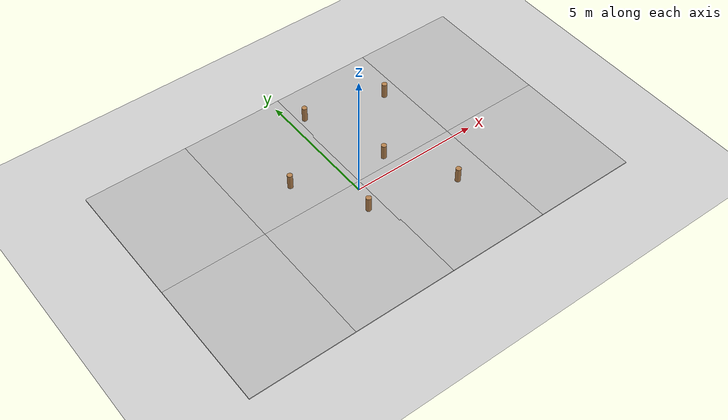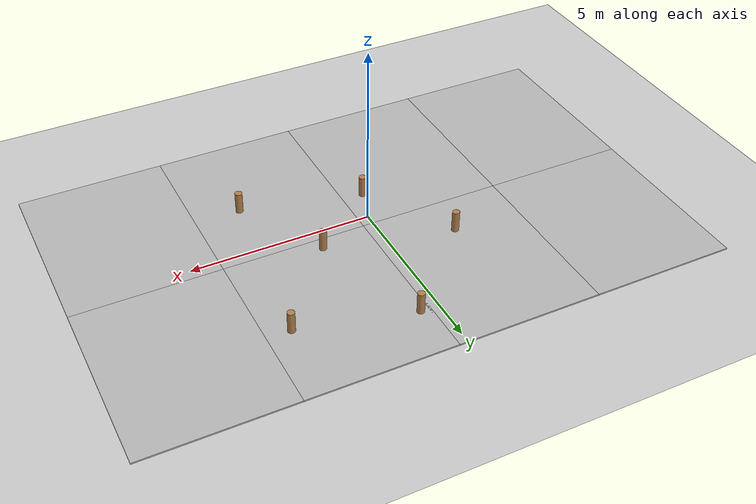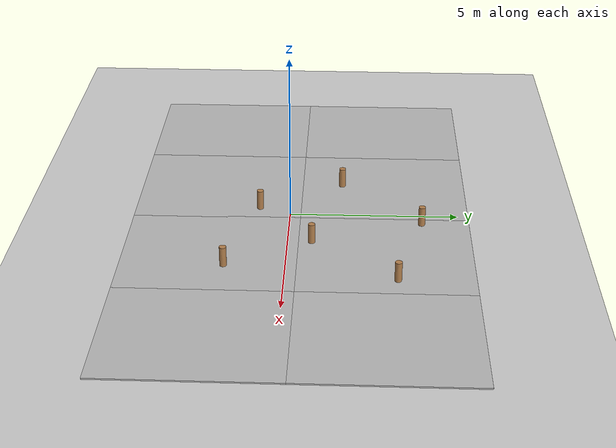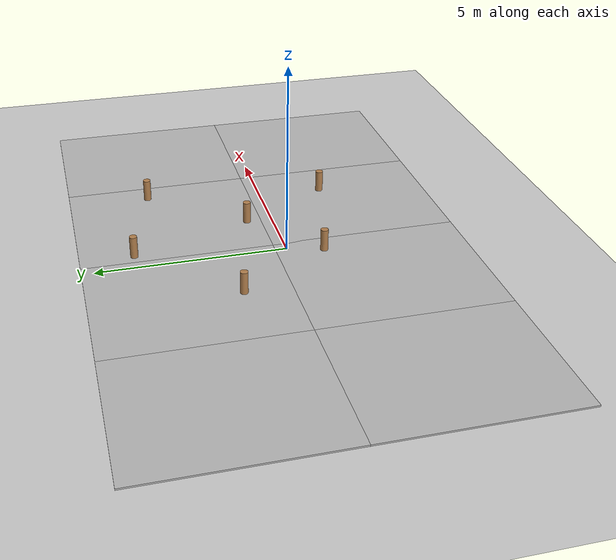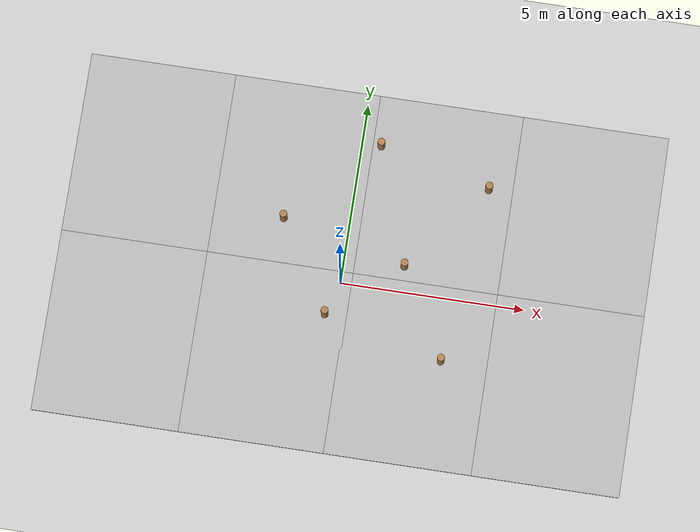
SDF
<sdf version="1.7">
 <world name="default">
  <physics name="1ms" type="ignored">
   <max_step_size>0.001</max_step_size>
   <real_time_factor>1.0</real_time_factor>
  </physics>
  <plugin filename="gz-sim-physics-system" name="gz::sim::systems::Physics"/>
  <plugin filename="gz-sim-user-commands-system" name="gz::sim::systems::UserCommands"/>
  <plugin filename="gz-sim-scene-broadcaster-system" name="gz::sim::systems::SceneBroadcaster"/>
  <plugin filename="gz-sim-sensors-system" name="gz::sim::systems::Sensors">
   <render_engine>ogre2</render_engine>
  </plugin>
  <plugin filename="gz-sim-imu-system" name="gz::sim::systems::Imu"/>
  <plugin filename="gz-sim-contact-system" name="gz::sim::systems::Contact"/>
  <plugin filename="gz-sim-navsat-system" name="gz::sim::systems::NavSat"/>
  <include><uri>https://fuel.gazebosim.org/1.0/OpenRobotics/models/Ground Plane</uri></include>
  <include><uri>https://fuel.gazebosim.org/1.0/OpenRobotics/models/Sun</uri></include>
  <gravity>0 0 -9.8</gravity>
  <magnetic_field>6e-06 2.3e-05 -4.2e-05</magnetic_field>
  <atmosphere type="adiabatic"/>
  <physics type="ode">
   <max_step_size>0.001</max_step_size>
   <real_time_factor>1</real_time_factor>
   <real_time_update_rate>200</real_time_update_rate>
  </physics>
  <scene><ambient>0.4 0.4 0.4 1</ambient><background>0.7 0.7 0.7 1</background><shadows>0</shadows></scene>
  <audio><device>default</device></audio>
  <spherical_coordinates>
   <surface_model>EARTH_WGS84</surface_model>
   <latitude_deg>49.9</latitude_deg>
   <longitude_deg>8.9</longitude_deg>
   <elevation>0</elevation>
   <heading_deg>90</heading_deg>
  </spherical_coordinates>
  <model name="my_grass_plane">
   <static>1</static>
   <link name="link">
    <collision name="collision">
     <geometry><plane><normal>0 0 1</normal><size>60 60</size></plane></geometry>
     <surface><friction><ode><mu>100</mu><mu2>50</mu2></ode></friction></surface>
    </collision>
    <visual name="visual">
     <cast_shadows>0</cast_shadows>
     <geometry><plane><normal>0 0 1</normal><size>60 60</size></plane></geometry>
     <material>
      <script>
       <uri>model://my_grass_plane/materials/scripts</uri>
       <uri>model://my_grass_plane/materials/textures/</uri>
       <name>MyGrassPlane/Image</name>
      </script>
     </material>
    </visual>
   </link>
   <pose>0.027033 0.023061 0.01 0 -0 0</pose>
  </model>
  <model name="mud_box">
   <static>1</static>
   <link name="link">
    <collision name="collision"><geometry><box><size>8 10 0.2</size></box></geometry></collision>
    <visual name="visual_1">
     <pose>-2 2.5 0 0 -0 0</pose>
     <cast_shadows>0</cast_shadows>
     <geometry><box><size>4 5 0.2</size></box></geometry>
     <material>
      <script>
       <uri>model://mud_box/materials/scripts</uri>
       <uri>model://mud_box/materials/textures</uri>
       <name>vrc/mud</name>
      </script>
     </material>
    </visual>
    <visual name="visual_2">
     <pose>2 2.5 0 0 -0 0</pose>
     <cast_shadows>0</cast_shadows>
     <geometry><box><size>4 5 0.2</size></box></geometry>
     <material>
      <script>
       <uri>model://mud_box/materials/scripts</uri>
       <uri>model://mud_box/materials/textures</uri>
       <name>vrc/mud</name>
      </script>
     </material>
    </visual>
    <visual name="visual_3">
     <pose>2 -2.5 0 0 -0 0</pose>
     <cast_shadows>0</cast_shadows>
     <geometry><box><size>4 5 0.2</size></box></geometry>
     <material>
      <script>
       <uri>model://mud_box/materials/scripts</uri>
       <uri>model://mud_box/materials/textures</uri>
       <name>vrc/mud</name>
      </script>
     </material>
    </visual>
    <visual name="visual_4">
     <pose>-2 -2.5 0 0 -0 0</pose>
     <cast_shadows>0</cast_shadows>
     <geometry><box><size>4 5 0.2</size></box></geometry>
     <material>
      <script>
       <uri>model://mud_box/materials/scripts</uri>
       <uri>model://mud_box/materials/textures</uri>
       <name>vrc/mud</name>
      </script>
     </material>
    </visual>
   </link>
   <pose>4.23875 0.317684 -0.067897 0 -0 0</pose>
  </model>
  <model name="mud_box_0">
   <static>1</static>
   <link name="link">
    <collision name="collision"><geometry><box><size>8 10 0.2</size></box></geometry></collision>
    <visual name="visual_1">
     <pose>-2 2.5 0 0 -0 0</pose>
     <cast_shadows>0</cast_shadows>
     <geometry><box><size>4 5 0.2</size></box></geometry>
     <material>
      <script>
       <uri>model://mud_box/materials/scripts</uri>
       <uri>model://mud_box/materials/textures</uri>
       <name>vrc/mud</name>
      </script>
     </material>
    </visual>
    <visual name="visual_2">
     <pose>2 2.5 0 0 -0 0</pose>
     <cast_shadows>0</cast_shadows>
     <geometry><box><size>4 5 0.2</size></box></geometry>
     <material>
      <script>
       <uri>model://mud_box/materials/scripts</uri>
       <uri>model://mud_box/materials/textures</uri>
       <name>vrc/mud</name>
      </script>
     </material>
    </visual>
    <visual name="visual_3">
     <pose>2 -2.5 0 0 -0 0</pose>
     <cast_shadows>0</cast_shadows>
     <geometry><box><size>4 5 0.2</size></box></geometry>
     <material>
      <script>
       <uri>model://mud_box/materials/scripts</uri>
       <uri>model://mud_box/materials/textures</uri>
       <name>vrc/mud</name>
      </script>
     </material>
    </visual>
    <visual name="visual_4">
     <pose>-2 -2.5 0 0 -0 0</pose>
     <cast_shadows>0</cast_shadows>
     <geometry><box><size>4 5 0.2</size></box></geometry>
     <material>
      <script>
       <uri>model://mud_box/materials/scripts</uri>
       <uri>model://mud_box/materials/textures</uri>
       <name>vrc/mud</name>
      </script>
     </material>
    </visual>
   </link>
   <pose>-3.7086 0.317684 -0.067897 0 -0 0</pose>
  </model>
  <model name="peg">
   <static>1</static>
   <link name="link">
    <pose>0 0 0.35 0 -0 0</pose>
    <inertial>
     <mass>0.0175</mass>
     <inertia>
      <ixx>9.74923e-06</ixx>
      <ixy>0</ixy>
      <ixz>0</ixz>
      <iyy>9.74923e-06</iyy>
      <iyz>0</iyz>
      <izz>8.31797e-07</izz>
     </inertia>
    </inertial>
    <collision name="collision">
     <geometry><cylinder><radius>0.1</radius><length>0.6</length></cylinder></geometry>
     <surface>
      <contact>
       <poissons_ratio>0.347</poissons_ratio>
       <elastic_modulus>8.8e+09</elastic_modulus>
       <ode><kp>100000</kp><kd>100</kd><max_vel>100</max_vel><min_depth>0.001</min_depth></ode>
      </contact>
      <friction>
       <torsional>
        <coefficient>1</coefficient>
        <use_patch_radius>0</use_patch_radius>
        <surface_radius>0.01</surface_radius>
       </torsional>
      </friction>
     </surface>
    </collision>
    <visual name="visual">
     <geometry><cylinder><radius>0.1</radius><length>0.6</length></cylinder></geometry>
     <material>
      <script><uri>file://media/materials/scripts/gazebo.material</uri><name>Gazebo/Wood</name></script>
     </material>
    </visual>
   </link>
   <pose>2.98528 -1.72893 -0.021402 0.001476 -0.006209 -1.6e-05</pose>
  </model>
  <model name="peg_0">
   <static>1</static>
   <link name="link">
    <pose>0 0 0.35 0 -0 0</pose>
    <inertial>
     <mass>0.0175</mass>
     <inertia>
      <ixx>9.74923e-06</ixx>
      <ixy>0</ixy>
      <ixz>0</ixz>
      <iyy>9.74923e-06</iyy>
      <iyz>0</iyz>
      <izz>8.31797e-07</izz>
     </inertia>
    </inertial>
    <collision name="collision">
     <geometry><cylinder><radius>0.1</radius><length>0.6</length></cylinder></geometry>
     <surface>
      <contact>
       <poissons_ratio>0.347</poissons_ratio>
       <elastic_modulus>8.8e+09</elastic_modulus>
       <ode><kp>100000</kp><kd>100</kd><max_vel>100</max_vel><min_depth>0.001</min_depth></ode>
      </contact>
      <friction>
       <torsional>
        <coefficient>1</coefficient>
        <use_patch_radius>0</use_patch_radius>
        <surface_radius>0.01</surface_radius>
       </torsional>
      </friction>
     </surface>
    </collision>
    <visual name="visual">
     <geometry><cylinder><radius>0.1</radius><length>0.6</length></cylinder></geometry>
     <material>
      <script><uri>file://media/materials/scripts/gazebo.material</uri><name>Gazebo/Wood</name></script>
     </material>
    </visual>
   </link>
   <pose>-0.296447 -0.921788 -0.018259 -0.006201 -0.001478 -3.6e-05</pose>
  </model>
  <model name="peg_1">
   <static>1</static>
   <link name="link">
    <pose>0 0 0.35 0 -0 0</pose>
    <inertial>
     <mass>0.0175</mass>
     <inertia>
      <ixx>9.74923e-06</ixx>
      <ixy>0</ixy>
      <ixz>0</ixz>
      <iyy>9.74923e-06</iyy>
      <iyz>0</iyz>
      <izz>8.31797e-07</izz>
     </inertia>
    </inertial>
    <collision name="collision">
     <geometry><cylinder><radius>0.1</radius><length>0.6</length></cylinder></geometry>
     <surface>
      <contact>
       <poissons_ratio>0.347</poissons_ratio>
       <elastic_modulus>8.8e+09</elastic_modulus>
       <ode><kp>100000</kp><kd>100</kd><max_vel>100</max_vel><min_depth>0.001</min_depth></ode>
      </contact>
      <friction>
       <torsional>
        <coefficient>1</coefficient>
        <use_patch_radius>0</use_patch_radius>
        <surface_radius>0.01</surface_radius>
       </torsional>
      </friction>
     </surface>
    </collision>
    <visual name="visual">
     <geometry><cylinder><radius>0.1</radius><length>0.6</length></cylinder></geometry>
     <material>
      <script><uri>file://media/materials/scripts/gazebo.material</uri><name>Gazebo/Wood</name></script>
     </material>
    </visual>
   </link>
   <pose>1.63598 0.700502 -0.021359 0.001098 -0.005264 -1.2e-05</pose>
  </model>
  <model name="peg_2">
   <static>1</static>
   <link name="link">
    <pose>0 0 0.35 0 -0 0</pose>
    <inertial>
     <mass>0.0175</mass>
     <inertia>
      <ixx>9.74923e-06</ixx>
      <ixy>0</ixy>
      <ixz>0</ixz>
      <iyy>9.74923e-06</iyy>
      <iyz>0</iyz>
      <izz>8.31797e-07</izz>
     </inertia>
    </inertial>
    <collision name="collision">
     <geometry><cylinder><radius>0.1</radius><length>0.6</length></cylinder></geometry>
     <surface>
      <contact>
       <poissons_ratio>0.347</poissons_ratio>
       <elastic_modulus>8.8e+09</elastic_modulus>
       <ode><kp>100000</kp><kd>100</kd><max_vel>100</max_vel><min_depth>0.001</min_depth></ode>
      </contact>
      <friction>
       <torsional>
        <coefficient>1</coefficient>
        <use_patch_radius>0</use_patch_radius>
        <surface_radius>0.01</surface_radius>
       </torsional>
      </friction>
     </surface>
    </collision>
    <visual name="visual">
     <geometry><cylinder><radius>0.1</radius><length>0.6</length></cylinder></geometry>
     <material>
      <script><uri>file://media/materials/scripts/gazebo.material</uri><name>Gazebo/Wood</name></script>
     </material>
    </visual>
   </link>
   <pose>-1.79879 1.53875 -0.018258 0.001477 -0.006205 -0.075759</pose>
  </model>
  <model name="peg_3">
   <static>1</static>
   <link name="link">
    <pose>0 0 0.35 0 -0 0</pose>
    <inertial>
     <mass>0.0175</mass>
     <inertia>
      <ixx>9.74923e-06</ixx>
      <ixy>0</ixy>
      <ixz>0</ixz>
      <iyy>9.74923e-06</iyy>
      <iyz>0</iyz>
      <izz>8.31797e-07</izz>
     </inertia>
    </inertial>
    <collision name="collision">
     <geometry><cylinder><radius>0.1</radius><length>0.6</length></cylinder></geometry>
     <surface>
      <contact>
       <poissons_ratio>0.347</poissons_ratio>
       <elastic_modulus>8.8e+09</elastic_modulus>
       <ode><kp>100000</kp><kd>100</kd><max_vel>100</max_vel><min_depth>0.001</min_depth></ode>
      </contact>
      <friction>
       <torsional>
        <coefficient>1</coefficient>
        <use_patch_radius>0</use_patch_radius>
        <surface_radius>0.01</surface_radius>
       </torsional>
      </friction>
     </surface>
    </collision>
    <visual name="visual">
     <geometry><cylinder><radius>0.1</radius><length>0.6</length></cylinder></geometry>
     <material>
      <script><uri>file://media/materials/scripts/gazebo.material</uri><name>Gazebo/Wood</name></script>
     </material>
    </visual>
   </link>
   <pose>3.58974 3.14681 -0.021402 0.001483 -0.006202 -6e-06</pose>
  </model>
  <model name="peg_4">
   <static>1</static>
   <link name="link">
    <pose>0 0 0.35 0 -0 0</pose>
    <inertial>
     <mass>0.0175</mass>
     <inertia>
      <ixx>9.74923e-06</ixx>
      <ixy>0</ixy>
      <ixz>0</ixz>
      <iyy>9.74923e-06</iyy>
      <iyz>0</iyz>
      <izz>8.31797e-07</izz>
     </inertia>
    </inertial>
    <collision name="collision">
     <geometry><cylinder><radius>0.1</radius><length>0.6</length></cylinder></geometry>
     <surface>
      <contact>
       <poissons_ratio>0.347</poissons_ratio>
       <elastic_modulus>8.8e+09</elastic_modulus>
       <ode><kp>100000</kp><kd>100</kd><max_vel>100</max_vel><min_depth>0.001</min_depth></ode>
      </contact>
      <friction>
       <torsional>
        <coefficient>1</coefficient>
        <use_patch_radius>0</use_patch_radius>
        <surface_radius>0.01</surface_radius>
       </torsional>
      </friction>
     </surface>
    </collision>
    <visual name="visual">
     <geometry><cylinder><radius>0.1</radius><length>0.6</length></cylinder></geometry>
     <material>
      <script><uri>file://media/materials/scripts/gazebo.material</uri><name>Gazebo/Wood</name></script>
     </material>
    </visual>
   </link>
   <pose>0.521729 3.9141 -0.021209 0.000346 -0.002543 -0.000245</pose>
  </model>
 </world>
</sdf>
